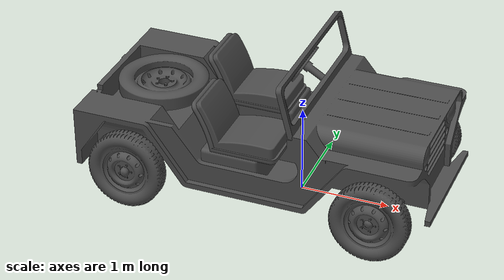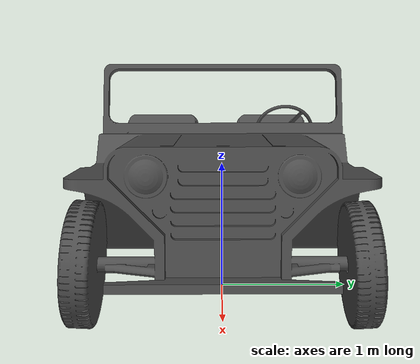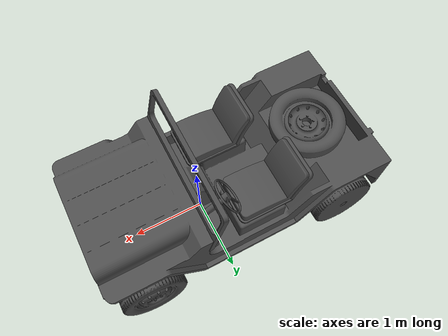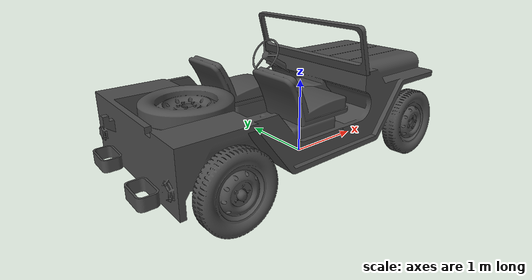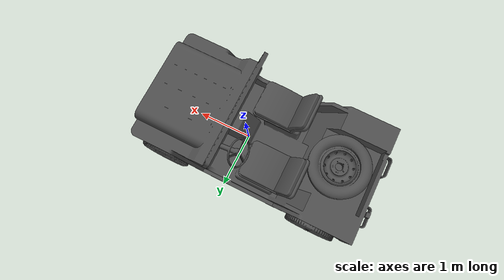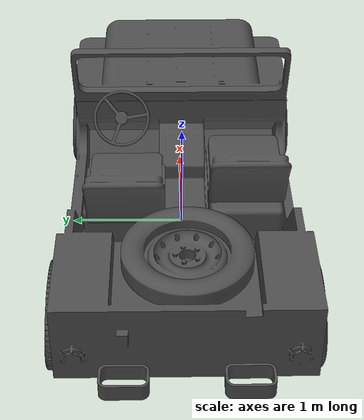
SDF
<?xml version="1.0" ?>
<sdf version="1.5">
  <model name="jeep">
    <static>false</static>
    <link name="base_link">
      <inertial>
        <mass>720.0</mass>
        <inertia>
          <ixx>140</ixx>
          <ixy>0.0</ixy>
          <iyy>550</iyy>
          <ixz>0.0</ixz>
          <iyz>0.0</iyz>
          <izz>550</izz>
        </inertia>
        <pose>0.1 0 0.4 0 0 0</pose>
      </inertial>
      <pose frame=''>-0 0 0.07 0 -0 0</pose>
      <visual name="visual">
        <pose>0 0 0 0 0 -1.5708</pose>
        <geometry>
          <mesh>
            <scale>1 1 1</scale>
            <uri>model://jeep/meshes/body_car.stl</uri>
          </mesh>
        </geometry>
        <material>
          <script>
            <uri>file://media/materials/scripts/gazebo.material</uri>
            <name>Gazebo/DarkGrey</name>
          </script>
        </material>
      </visual>

      <visual name="seat_r">
        <pose>0 0 0 0 0 -1.5708</pose>
        <geometry>
          <mesh>
            <scale>1 1 1</scale>
            <uri>model://jeep/meshes/seat_r.stl</uri>
          </mesh>
        </geometry>
        <material>
          <script>
            <uri>file://media/materials/scripts/gazebo.material</uri>
            <name>Gazebo/DarkGrey</name>
          </script>
        </material>
      </visual>

      <visual name="seat_l">
        <pose>0 0 0 0 0 -1.5708</pose>
        <geometry>
          <mesh>
            <scale>1 1 1</scale>
            <uri>model://jeep/meshes/seat_l.stl</uri>
          </mesh>
        </geometry>
        <material>
          <script>
            <uri>file://media/materials/scripts/gazebo.material</uri>
            <name>Gazebo/DarkGrey</name>
          </script>
        </material>
      </visual>

      <visual name="spare_wheel">
        <pose>0 0 0 0 0 -1.5708</pose>
        <geometry>
          <mesh>
            <scale>1 1 1</scale>
            <uri>model://jeep/meshes/spare_wheel.stl</uri>
          </mesh>
        </geometry>
        <material>
          <script>
            <uri>file://media/materials/scripts/gazebo.material</uri>
            <name>Gazebo/DarkGrey</name>
          </script>
        </material>
      </visual>

      <visual name="steering_wheel">
        <pose>0 0 0 0 0 -1.5708</pose>
        <geometry>
          <mesh>
            <scale>1 1 1</scale>
            <uri>model://jeep/meshes/steering_wheel.stl</uri>
          </mesh>
        </geometry>
        <material>
          <script>
            <uri>file://media/materials/scripts/gazebo.material</uri>
            <name>Gazebo/DarkGrey</name>
          </script>
        </material>
      </visual>

      <visual name="front_window">
        <pose>0 0 0 0 0 -1.5708</pose>
        <geometry>
          <mesh>
            <scale>1 1 1</scale>
            <uri>model://jeep/meshes/front_window.stl</uri>
          </mesh>
        </geometry>
        <material>
          <script>
            <uri>file://media/materials/scripts/gazebo.material</uri>
            <name>Gazebo/DarkGrey</name>
          </script>
        </material>
      </visual>

      <collision name="base_link_bottom">
        <pose>-0.280000 0.0 0.335 0 0 0</pose>
        <geometry>
          <box>
            <size>1.34 1.65746 0.06</size>
          </box>
        </geometry>
      </collision>
      <collision name="cargo_bottom">
        <pose>-1.680000 0.0 0.701000 0.0 0.0 0.0</pose>
        <geometry>
          <box>
            <size>1.04609 1.6998 0.01</size>
          </box>
        </geometry>
      </collision>
      <collision name="cargo_back">
        <pose>-2.215000 0.0 0.850000 0.0 0.0 0.0</pose>
        <geometry>
          <box>
            <size>0.05 1.69982 0.27</size>
          </box>
        </geometry>
      </collision>
      <collision name="cargo_left">
        <pose>-1.705000 0.82491 0.850000 0.0 0.0 0.0</pose>
        <geometry>
          <box>
            <size>1.04609 0.05 0.27</size>
          </box>
        </geometry>
      </collision>
      <collision name="cargo_right">
        <pose>-1.705000 -0.82491 0.850000 0.0 0.0 0.0</pose>
        <geometry>
          <box>
            <size>1.04609 0.05 0.27</size>
          </box>
        </geometry>
      </collision>
      <collision name="seat">
        <pose>-0.540000 0.0 0.62 0 0 0</pose>
        <geometry>
          <box>
            <size>0.52167 1.37206 0.53369</size>
          </box>
        </geometry>
        <surface>
          <contact>
            <ode>
              <min_depth>0.01</min_depth>
            </ode>
          </contact>
        </surface>
      </collision>
      <collision name="mud_seat">
        <pose>-0.54000 0.0 0.86 0 0 0</pose>
        <geometry>
          <box>
            <size>0.52167 1.30 0.1</size>
          </box>
        </geometry>
        <surface>
          <contact>
            <collide_without_contact>true</collide_without_contact>
          </contact>
        </surface>
      </collision>
      <sensor name="seat_contact" type="contact">
        <always_on>true</always_on>
        <update_rate>1000</update_rate>
        <contact>
          <collision>mud_seat</collision>
        </contact>
      </sensor>
      <collision name="seat_back">
        <pose>-0.830000 0.0 1.125 0.0 -0.2 0.0</pose>
        <geometry>
          <box>
            <size>0.06 1.37206 0.6</size>
          </box>
        </geometry>
      </collision>
      <collision name="engine">
        <pose>0.89 0.0 0.75 0.0 0.0 0.0</pose>
        <geometry>
          <box>
            <size>1.4 1.8 0.8</size>
          </box>
        </geometry>
      </collision>
      <collision name="rollcage_top_front">
        <pose>0.065000 0.0 1.7 0 1.230000 0</pose>
        <geometry>
          <box>
            <size>0.01299 1.54 0.10226</size>
          </box>
        </geometry>
      </collision>
      <collision name="rollcage_front_left">
        <pose>0.112000 -0.885 1.440000 0 -0.270000 0</pose>
        <geometry>
          <cylinder>
            <radius>0.03</radius>
            <length>0.55</length>
          </cylinder>
        </geometry>
      </collision>
      <collision name="rollcage_front_right">
        <pose>0.112000 0.885 1.440000 0 -0.54 0</pose>
        <geometry>
          <cylinder>
            <radius>0.03</radius>
            <length>0.55</length>
          </cylinder>
        </geometry>
      </collision>
    </link>
    <link name='jeep/imu_link'>
      <pose>0 0 0 0 0 0</pose>
      <inertial>
        <pose>0 0 0 0 0 0</pose>
        <mass>0.015</mass>
        <inertia>
          <ixx>1e-05</ixx>
          <ixy>0</ixy>
          <ixz>0</ixz>
          <iyy>1e-05</iyy>
          <iyz>0</iyz>
          <izz>1e-05</izz>
        </inertia>
      </inertial>
    </link>
    <joint name='jeep/imu_joint' type='revolute'>
      <child>jeep/imu_link</child>
      <parent>base_link</parent>
      <axis>
        <xyz>1 0 0</xyz>
        <limit>
          <lower>0</lower>
          <upper>0</upper>
          <effort>0</effort>
          <velocity>0</velocity>
        </limit>
        <dynamics>
          <spring_reference>0</spring_reference>
          <spring_stiffness>0</spring_stiffness>
        </dynamics>
        <use_parent_model_frame>1</use_parent_model_frame>
      </axis>
    </joint>
    <link name="front_left_wheel">
      <pose>1.082230 0.71562 0.416970 -1.52 0.0 0.0</pose>
      <inertial>
        <mass>12</mass>
        <!-- estimated from http://www.rzrforums.net/wheels-tires/1729-tire-wheel-weights-most-sizes.html -->
        <inertia>
          <ixx>0.5</ixx>
          <ixy>0.0</ixy>
          <iyy>0.5</iyy>
          <ixz>0.0</ixz>
          <iyz>0.0</iyz>
          <izz>1.0</izz>
        </inertia>
      </inertial>
      <collision name="collision">
        <pose>0 0 0.21 0 0.0 0.0</pose>
        <geometry>
          <cylinder>
            <radius>0.417500</radius>
            <length>0.239400</length>
          </cylinder>
        </geometry>
        <max_contacts>1</max_contacts>
        <surface>
          <friction>
            <ode>
              <mu>1.0</mu>
              <mu2>1.0</mu2>
              <fdir1>0 0 1</fdir1>
              <slip1>0.0</slip1>
              <slip2>0.0</slip2>
            </ode>
          </friction>
          <contact>
            <ode>
              <min_depth>0.005</min_depth>
              <kp>1e8</kp>
            </ode>
          </contact>
        </surface>
      </collision>
      <visual name="visual">
        <pose>-0.3063 1.476200 -0.663800 0 1.570796 0</pose>
        <geometry>
          <mesh>
            <uri>model://jeep/meshes/wheel.stl</uri>
            <scale>1.003700111 0.886200464 0.886200464</scale>
          </mesh>
        </geometry>
        <material>
          <script>
            <uri>file://media/materials/scripts/gazebo.material</uri>
            <name>Gazebo/DarkGrey</name>
          </script>
        </material>
      </visual>
    </link>
    <link name="front_right_wheel">
      <pose>1.082230 -0.71562 0.416970 1.52 0.0 0.0</pose>
      <inertial>
        <mass>12</mass>
        <!-- estimated from http://www.rzrforums.net/wheels-tires/1729-tire-wheel-weights-most-sizes.html -->
        <inertia>
          <ixx>0.5</ixx>
          <ixy>0.0</ixy>
          <iyy>0.5</iyy>
          <ixz>0.0</ixz>
          <iyz>0.0</iyz>
          <izz>1.0</izz>
        </inertia>
      </inertial>
      <collision name="collision">
        <pose>0 0 0.21 0 0.0 0.0</pose>
        <geometry>
          <cylinder>
            <radius>0.417500</radius>
            <length>0.239400</length>
          </cylinder>
        </geometry>
        <max_contacts>1</max_contacts>
        <surface>
          <friction>
            <ode>
              <mu>1.0</mu>
              <mu2>1.0</mu2>
              <fdir1>0 0 1</fdir1>
              <slip1>0.0</slip1>
              <slip2>0.0</slip2>
            </ode>
          </friction>
          <contact>
            <ode>
              <min_depth>0.005</min_depth>
              <kp>1e8</kp>
            </ode>
          </contact>
        </surface>
      </collision>
      <visual name="visual">
        <pose>-0.306300 1.476200 -0.663800 0 1.570796 0</pose>
        <geometry>
          <mesh>
            <uri>model://jeep/meshes/wheel.stl</uri>
            <scale>1.003700111 0.886200464 0.886200464</scale>
          </mesh>
        </geometry>
        <material>
          <script>
            <uri>file://media/materials/scripts/gazebo.material</uri>
            <name>Gazebo/DarkGrey</name>
          </script>
        </material>
      </visual>
    </link>
    <link name="rear_left_wheel">
      <pose>-1.663770 0.71562 0.416970 -1.52 0.0 0.0</pose>
      <inertial>
        <mass>12</mass>
        <!-- estimated from http://www.rzrforums.net/wheels-tires/1729-tire-wheel-weights-most-sizes.html -->
        <inertia>
          <ixx>0.5</ixx>
          <ixy>0.0</ixy>
          <iyy>0.5</iyy>
          <ixz>0.0</ixz>
          <iyz>0.0</iyz>
          <izz>1.0</izz>
        </inertia>
      </inertial>
      <collision name="collision">
        <pose>0 0 0.21 0 0.0 0.0</pose>
        <geometry>
          <cylinder>
            <radius>0.417500</radius>
            <length>0.239400</length>
          </cylinder>
        </geometry>
        <max_contacts>1</max_contacts>
        <surface>
          <friction>
            <ode>
              <mu>1.0</mu>
              <mu2>1.0</mu2>
              <fdir1>0 0 1</fdir1>
              <slip1>0.0</slip1>
              <slip2>0.0</slip2>
            </ode>
          </friction>
          <contact>
            <ode>
              <min_depth>0.005</min_depth>
              <kp>1e8</kp>
            </ode>
          </contact>
        </surface>
      </collision>
      <visual name="visual">
        <pose>0.320000 1.470000 1.130000 0 -1.570800 0</pose>
        <geometry>
          <mesh>
            <uri>model://jeep/meshes/wheel.stl</uri>
            <scale>1.003700111 0.886200464 0.886200464</scale>
          </mesh>
        </geometry>
        <material>
          <script>
            <uri>file://media/materials/scripts/gazebo.material</uri>
            <name>Gazebo/DarkGrey</name>
          </script>
        </material>
      </visual>
    </link>
    <link name="rear_right_wheel">
      <pose>-1.663770 -0.71562 0.416970 1.52 0.0 0.0</pose>
      <inertial>
        <mass>12</mass>
        <!-- estimated from http://www.rzrforums.net/wheels-tires/1729-tire-wheel-weights-most-sizes.html -->
        <inertia>
          <ixx>0.5</ixx>
          <ixy>0.0</ixy>
          <iyy>0.5</iyy>
          <ixz>0.0</ixz>
          <iyz>0.0</iyz>
          <izz>1.0</izz>
        </inertia>
      </inertial>
      <collision name="collision">
        <pose>0 0 0.21 0 0.0 0.0</pose>
        <geometry>
          <cylinder>
            <radius>0.417500</radius>
            <length>0.239400</length>
          </cylinder>
        </geometry>
        <max_contacts>1</max_contacts>
        <surface>
          <friction>
            <ode>
              <mu>1.0</mu>
              <mu2>1.0</mu2>
              <fdir1>0 0 1</fdir1>
              <slip1>0.0</slip1>
              <slip2>0.0</slip2>
            </ode>
          </friction>
          <contact>
            <ode>
              <min_depth>0.005</min_depth>
              <kp>1e8</kp>
            </ode>
          </contact>
        </surface>
      </collision>
      <visual name="visual">
        <pose>-0.310000 1.480000 -0.640000 0 1.570796 0</pose>
        <geometry>
          <mesh>
            <uri>model://jeep/meshes/wheel.stl</uri>
            <scale>1.003700111 0.886200464 0.886200464</scale>
          </mesh>
        </geometry>
        <material>
          <script>
            <uri>file://media/materials/scripts/gazebo.material</uri>
            <name>Gazebo/DarkGrey</name>
          </script>
        </material>
      </visual>
    </link>
    <link name="front_right_wheel_steering_block">
      <pose>1.082230 -0.5 0.416970 1.570796 0.0 0.0</pose>
      <inertial>
        <mass>1</mass>
        <inertia>
          <ixx>0.01</ixx>
          <ixy>0.0</ixy>
          <iyy>0.01</iyy>
          <ixz>0.0</ixz>
          <iyz>0.0</iyz>
          <izz>0.01</izz>
        </inertia>
      </inertial>
      <collision name="collision">
        <geometry>
          <cylinder>
            <radius>0.05</radius>
            <length>0.01</length>
          </cylinder>
        </geometry>
      </collision>
    </link>
    <link name="front_left_wheel_steering_block">
      <pose>1.082230 0.5 0.416970 1.570796 0.0 0.0</pose>
      <inertial>
        <mass>1</mass>
        <inertia>
          <ixx>0.01</ixx>
          <ixy>0.0</ixy>
          <iyy>0.01</iyy>
          <ixz>0.0</ixz>
          <iyz>0.0</iyz>
          <izz>0.01</izz>
        </inertia>
      </inertial>
      <collision name="collision">
        <geometry>
          <cylinder>
            <radius>0.05</radius>
            <length>0.01</length>
          </cylinder>
        </geometry>
      </collision>
    </link>

    <joint type="revolute" name="front_left_steering_joint">
      <child>front_left_wheel_steering_block</child>
      <parent>base_link</parent>
      <axis>
        <xyz>0 0 1</xyz>
        <limit>
          <lower>-0.7727</lower>
          <upper>0.7727</upper>
        </limit>
        <dynamics>
          <damping>50.0</damping>
        </dynamics>
        <use_parent_model_frame>true</use_parent_model_frame>
      </axis>
      <physics>
        <ode>
          <cfm_damping>1</cfm_damping>
          <limit>
            <cfm>0.000000</cfm>
            <erp>0.900000</erp>
          </limit>
        </ode>
      </physics>
    </joint>
    <joint type="revolute" name="front_left_wheel_joint">
      <child>front_left_wheel</child>
      <parent>front_left_wheel_steering_block</parent>
      <axis>
        <xyz>0 1 0.05</xyz>
        <use_parent_model_frame>true</use_parent_model_frame>
      </axis>
    </joint>
    <joint type="revolute" name="front_right_steering_joint">
      <child>front_right_wheel_steering_block</child>
      <parent>base_link</parent>
      <axis>
        <xyz>0 0 1</xyz>
        <limit>
          <lower>-0.7727</lower>
          <upper>0.7727</upper>
        </limit>
        <dynamics>
          <damping>50.0</damping>
        </dynamics>
        <use_parent_model_frame>true</use_parent_model_frame>
      </axis>
      <physics>
        <ode>
          <cfm_damping>1</cfm_damping>
          <limit>
            <cfm>0.000000</cfm>
            <erp>0.900000</erp>
          </limit>
        </ode>
      </physics>
    </joint>
    <joint type="revolute" name="front_right_wheel_joint">
      <child>front_right_wheel</child>
      <parent>front_right_wheel_steering_block</parent>
      <axis>
        <xyz>0 1 -0.05</xyz>
        <use_parent_model_frame>true</use_parent_model_frame>
      </axis>
    </joint>
    <joint type="revolute" name="rear_left_wheel_joint">
      <child>rear_left_wheel</child>
      <parent>base_link</parent>
      <axis>
        <xyz>0 1 0.05</xyz>
        <use_parent_model_frame>true</use_parent_model_frame>
      </axis>
    </joint>
    <joint type="revolute" name="rear_right_wheel_joint">
      <pose>0.0 0.0 -0.1 0 0 0</pose>
      <child>rear_right_wheel</child>
      <parent>base_link</parent>
      <axis>
        <xyz>0 1 -0.05</xyz>
        <use_parent_model_frame>true</use_parent_model_frame>
      </axis>
    </joint>

    <plugin name='barometer_plugin' filename='libgazebo_barometer_plugin.so'>
      <robotNamespace/>
      <pubRate>50</pubRate>
      <baroTopic>/baro</baroTopic>
    </plugin>
    <plugin name='gazebo_imu_plugin' filename='libgazebo_imu_plugin.so'>
      <robotNamespace></robotNamespace>
      <linkName>jeep/imu_link</linkName>
      <imuTopic>/imu</imuTopic>
      <gyroscopeNoiseDensity>0.0003394</gyroscopeNoiseDensity>
      <gyroscopeRandomWalk>3.8785e-05</gyroscopeRandomWalk>
      <gyroscopeBiasCorrelationTime>1000.0</gyroscopeBiasCorrelationTime>
      <gyroscopeTurnOnBiasSigma>0.0087</gyroscopeTurnOnBiasSigma>
      <accelerometerNoiseDensity>0.004</accelerometerNoiseDensity>
      <accelerometerRandomWalk>0.006</accelerometerRandomWalk>
      <accelerometerBiasCorrelationTime>300.0</accelerometerBiasCorrelationTime>
      <accelerometerTurnOnBiasSigma>0.196</accelerometerTurnOnBiasSigma>
    </plugin>
    <plugin name='groundtruth_plugin' filename='libgazebo_groundtruth_plugin.so'>
      <robotNamespace/>
    </plugin>
    <plugin name='magnetometer_plugin' filename='libgazebo_magnetometer_plugin.so'>
      <robotNamespace/>
      <pubRate>100</pubRate>
      <noiseDensity>0.0004</noiseDensity>
      <randomWalk>6.4e-06</randomWalk>
      <biasCorrelationTime>600</biasCorrelationTime>
      <magTopic>/mag</magTopic>
    </plugin>
    <plugin filename="libgazebo_ros_skid_steer_drive.so" name="skid_steer_drive_controller">
      <updateRate>100.0</updateRate>
      <robotNamespace>jeep</robotNamespace>
      <leftFrontJoint>front_left_wheel_joint</leftFrontJoint>
      <rightFrontJoint>front_right_wheel_joint</rightFrontJoint>
      <leftRearJoint>rear_left_wheel_joint</leftRearJoint>
      <rightRearJoint>rear_right_wheel_joint</rightRearJoint>
      <wheelSeparation>1.75</wheelSeparation>
      <wheelDiameter>0.835</wheelDiameter>
      <robotBaseFrame>base_link</robotBaseFrame>
      <MaxForce>5.0</MaxForce>
      <torque>200</torque>
      <commandTopic>cmd_vel</commandTopic>
      <odometryTopic>odom</odometryTopic>
      <odometryFrame>odom</odometryFrame>
      <broadcastTF>1</broadcastTF>
    </plugin>
  </model>
</sdf>
